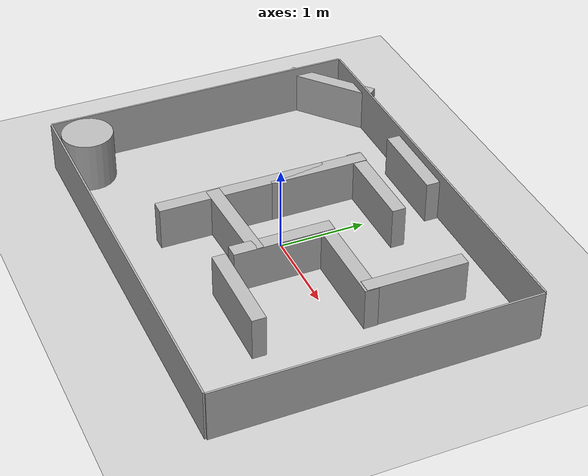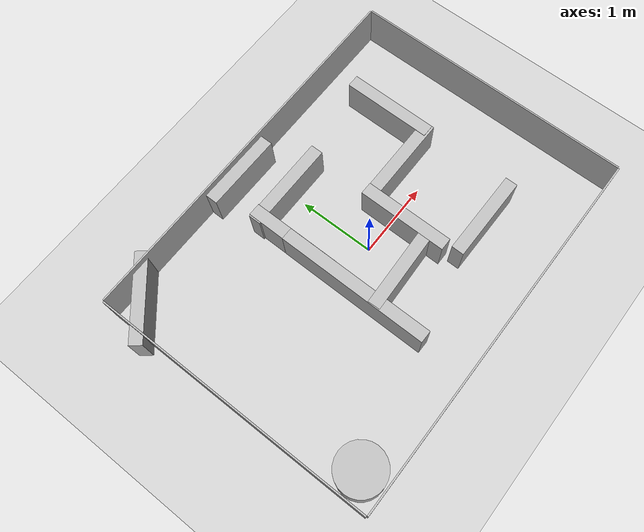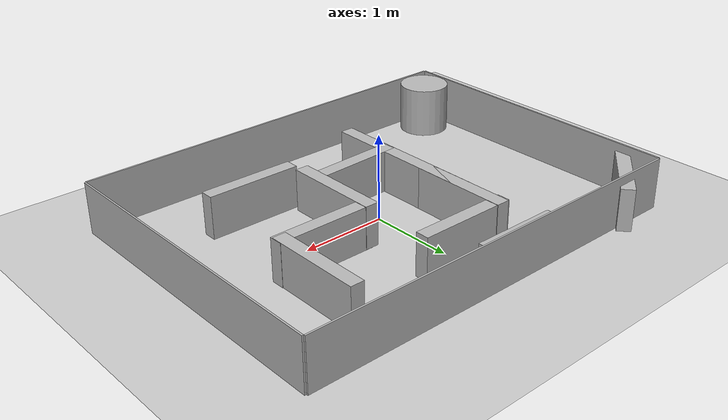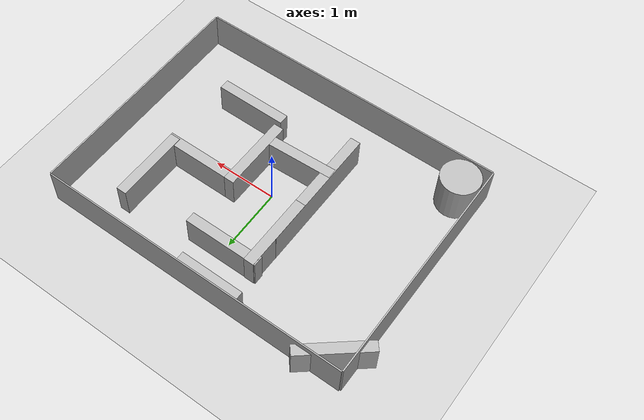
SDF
<sdf version="1.6">
 <world name="default">
  <light name="sun" type="directional">
   <pose>0 0 10 0 -0 0</pose>
   <diffuse>0.8 0.8 0.8 1</diffuse>
   <specular>0.2 0.2 0.2 1</specular>
   <attenuation>
    <range>1000</range>
    <constant>0.9</constant>
    <linear>0.01</linear>
    <quadratic>0.001</quadratic>
   </attenuation>
   <direction>-0.5 0.1 -0.9</direction>
  </light>
  <model name="ground_plane">
   <static>1</static>
   <link name="link">
    <collision name="collision">
     <geometry><plane><normal>0 0 1</normal><size>100 100</size></plane></geometry>
     <surface><friction><ode><mu>100</mu><mu2>50</mu2></ode></friction></surface>
    </collision>
    <visual name="visual">
     <cast_shadows>0</cast_shadows>
     <geometry><plane><normal>0 0 1</normal><size>100 100</size></plane></geometry>
     <material>
      <script><uri>file://media/materials/scripts/gazebo.material</uri><name>Gazebo/Grey</name></script>
     </material>
    </visual>
   </link>
  </model>
  <gravity>0 0 -9.8</gravity>
  <magnetic_field>6e-06 2.3e-05 -4.2e-05</magnetic_field>
  <atmosphere type="adiabatic"/>
  <physics name="default_physics" default="0" type="ode">
   <max_step_size>0.001</max_step_size>
   <real_time_factor>1</real_time_factor>
   <real_time_update_rate>1000</real_time_update_rate>
  </physics>
  <scene><ambient>0.4 0.4 0.4 1</ambient><background>0.7 0.7 0.7 1</background><shadows>1</shadows></scene>
  <spherical_coordinates>
   <surface_model>EARTH_WGS84</surface_model>
   <latitude_deg>0</latitude_deg>
   <longitude_deg>0</longitude_deg>
   <elevation>0</elevation>
   <heading_deg>0</heading_deg>
  </spherical_coordinates>
  <model name="border_Top">
   <pose>1e-06 1.84001 0.3 -1.4e-05 -0 -4e-06</pose>
   <static>1</static>
   <link name="link">
    <collision name="collision">
     <geometry><box><size>4.88 0.02 0.6</size></box></geometry>
     <surface><friction><ode><mu>0.01</mu><mu2>0.01</mu2></ode></friction></surface>
    </collision>
    <visual name="visual"><geometry><box><size>4.88 0.02 0.6</size></box></geometry></visual>
    <inertial>
     <inertia><ixx>1</ixx><ixy>0</ixy><ixz>0</ixz><iyy>1</iyy><iyz>0</iyz><izz>1</izz></inertia>
     <mass>1</mass>
    </inertial>
   </link>
  </model>
  <model name="border_Bot">
   <static>1</static>
   <pose>-9e-06 -1.84002 0.3 1e-05 -0 2e-06</pose>
   <link name="link">
    <collision name="collision">
     <geometry><box><size>4.88 0.02 0.6</size></box></geometry>
     <surface><friction><ode><mu>0.01</mu><mu2>0.01</mu2></ode></friction></surface>
    </collision>
    <visual name="visual"><geometry><box><size>4.88 0.02 0.6</size></box></geometry></visual>
    <inertial>
     <inertia><ixx>1</ixx><ixy>0</ixy><ixz>0</ixz><iyy>1</iyy><iyz>0</iyz><izz>1</izz></inertia>
     <mass>1</mass>
    </inertial>
   </link>
  </model>
  <model name="border_Left">
   <static>1</static>
   <pose>-2.45001 5e-06 0.3 0 7e-06 0</pose>
   <link name="link">
    <collision name="collision">
     <geometry><box><size>0.02 3.66 0.6</size></box></geometry>
     <surface><friction><ode><mu>0.01</mu><mu2>0.01</mu2></ode></friction></surface>
    </collision>
    <visual name="visual"><geometry><box><size>0.02 3.66 0.6</size></box></geometry></visual>
    <inertial>
     <inertia><ixx>1</ixx><ixy>0</ixy><ixz>0</ixz><iyy>1</iyy><iyz>0</iyz><izz>1</izz></inertia>
     <mass>1</mass>
    </inertial>
   </link>
  </model>
  <model name="border_Right">
   <static>1</static>
   <pose>2.45 -2e-06 0.3 0 -8e-06 -1e-06</pose>
   <link name="link">
    <collision name="collision">
     <geometry><box><size>0.02 3.66 0.6</size></box></geometry>
     <surface><friction><ode><mu>0.01</mu><mu2>0.01</mu2></ode></friction></surface>
    </collision>
    <visual name="visual"><geometry><box><size>0.02 3.66 0.6</size></box></geometry></visual>
    <inertial>
     <inertia><ixx>1</ixx><ixy>0</ixy><ixz>0</ixz><iyy>1</iyy><iyz>0</iyz><izz>1</izz></inertia>
     <mass>1</mass>
    </inertial>
   </link>
  </model>
  <model name="cylinder_1">
   <pose>-2.12191 -1.51039 0.3 0 -0 0</pose>
   <static>1</static>
   <link name="link">
    <collision name="collision">
     <geometry><cylinder><radius>0.3</radius><length>0.6</length></cylinder></geometry>
    </collision>
    <visual name="visual">
     <geometry><cylinder><radius>0.3</radius><length>0.6</length></cylinder></geometry>
    </visual>
   </link>
  </model>
  <model name="box_1_clone">
   <static>1</static>
   <pose>-0.272552 1.74672 0.250001 -3e-06 -0 -1.57648</pose>
   <link name="link">
    <collision name="collision">
     <geometry><box><size>0.16 1 0.5</size></box></geometry>
     <surface><friction><ode><mu>0.01</mu><mu2>0.01</mu2></ode></friction></surface>
    </collision>
    <visual name="visual"><geometry><box><size>0.16 1 0.5</size></box></geometry></visual>
    <inertial>
     <inertia><ixx>1</ixx><ixy>0</ixy><ixz>0</ixz><iyy>1</iyy><iyz>0</iyz><izz>1</izz></inertia>
     <mass>1</mass>
    </inertial>
   </link>
  </model>
  <model name="box_1_clone_0">
   <static>1</static>
   <pose>-0.567894 -0.223682 0.250001 -0 3e-06 -0.003728</pose>
   <link name="link">
    <collision name="collision">
     <geometry><box><size>0.16 1.9931 0.5</size></box></geometry>
     <surface><friction><ode><mu>0.01</mu><mu2>0.01</mu2></ode></friction></surface>
    </collision>
    <visual name="visual"><geometry><box><size>0.16 1.9931 0.5</size></box></geometry></visual>
    <inertial>
     <inertia><ixx>1</ixx><ixy>0</ixy><ixz>0</ixz><iyy>1</iyy><iyz>0</iyz><izz>1</izz></inertia>
     <mass>1</mass>
    </inertial>
   </link>
  </model>
  <model name="box_1_clone_clone">
   <static>1</static>
   <pose>1.02354 -0.915799 0.250001 -3e-06 -0 -1.57648</pose>
   <link name="link">
    <collision name="collision">
     <geometry><box><size>0.16 1.10724 0.5</size></box></geometry>
     <surface><friction><ode><mu>0.01</mu><mu2>0.01</mu2></ode></friction></surface>
    </collision>
    <visual name="visual"><geometry><box><size>0.16 1.10724 0.5</size></box></geometry></visual>
    <inertial>
     <inertia><ixx>1</ixx><ixy>0</ixy><ixz>0</ixz><iyy>1</iyy><iyz>0</iyz><izz>1</izz></inertia>
     <mass>1</mass>
    </inertial>
   </link>
  </model>
  <model name="box_1_clone_clone_0">
   <static>1</static>
   <pose>-2.16837 1.5972 0.250001 -2e-06 2e-06 -0.874475</pose>
   <link name="link">
    <collision name="collision">
     <geometry><box><size>0.16 1.10724 0.5</size></box></geometry>
     <surface><friction><ode><mu>0.01</mu><mu2>0.01</mu2></ode></friction></surface>
    </collision>
    <visual name="visual"><geometry><box><size>0.16 1.10724 0.5</size></box></geometry></visual>
    <inertial>
     <inertia><ixx>1</ixx><ixy>0</ixy><ixz>0</ixz><iyy>1</iyy><iyz>0</iyz><izz>1</izz></inertia>
     <mass>1</mass>
    </inertial>
   </link>
  </model>
  <model name="box_1_clone_0_clone">
   <static>1</static>
   <pose>-0.054526 -0.524471 0.250002 -3e-06 1e-06 -1.53147</pose>
   <link name="link">
    <collision name="collision">
     <geometry><box><size>0.16 1.16482 0.5</size></box></geometry>
     <surface><friction><ode><mu>0.01</mu><mu2>0.01</mu2></ode></friction></surface>
    </collision>
    <visual name="visual"><geometry><box><size>0.16 1.16482 0.5</size></box></geometry></visual>
    <inertial>
     <inertia><ixx>1</ixx><ixy>0</ixy><ixz>0</ixz><iyy>1</iyy><iyz>0</iyz><izz>1</izz></inertia>
     <mass>1</mass>
    </inertial>
   </link>
  </model>
  <model name="box_1_clone_0_clone_0">
   <static>1</static>
   <pose>-0.077723 1.18033 0.245761 -3e-06 -0 -1.57145</pose>
   <link name="link">
    <collision name="collision">
     <geometry><box><size>0.16 1.16482 0.5</size></box></geometry>
     <surface><friction><ode><mu>0.01</mu><mu2>0.01</mu2></ode></friction></surface>
    </collision>
    <visual name="visual"><geometry><box><size>0.16 1.16482 0.5</size></box></geometry></visual>
    <inertial>
     <inertia><ixx>1</ixx><ixy>0</ixy><ixz>0</ixz><iyy>1</iyy><iyz>0</iyz><izz>1</izz></inertia>
     <mass>1</mass>
    </inertial>
   </link>
  </model>
  <model name="box_1_clone_0_clone_1">
   <static>1</static>
   <pose>0.453128 -0.183537 0.250001 -0 3e-06 -0.003728</pose>
   <link name="link">
    <collision name="collision">
     <geometry><box><size>0.16 1.16482 0.5</size></box></geometry>
     <surface><friction><ode><mu>0.01</mu><mu2>0.01</mu2></ode></friction></surface>
    </collision>
    <visual name="visual"><geometry><box><size>0.16 1.16482 0.5</size></box></geometry></visual>
    <inertial>
     <inertia><ixx>1</ixx><ixy>0</ixy><ixz>0</ixz><iyy>1</iyy><iyz>0</iyz><izz>1</izz></inertia>
     <mass>1</mass>
    </inertial>
   </link>
  </model>
  <model name="box_1_clone_0_clone_2">
   <static>1</static>
   <pose>-0.563006 0.685208 0.250001 -0 3e-06 -0.003728</pose>
   <link name="link">
    <collision name="collision">
     <geometry><box><size>0.16 1.16482 0.5</size></box></geometry>
     <surface><friction><ode><mu>0.01</mu><mu2>0.01</mu2></ode></friction></surface>
    </collision>
    <visual name="visual"><geometry><box><size>0.16 1.16482 0.5</size></box></geometry></visual>
    <inertial>
     <inertia><ixx>1</ixx><ixy>0</ixy><ixz>0</ixz><iyy>1</iyy><iyz>0</iyz><izz>1</izz></inertia>
     <mass>1</mass>
    </inertial>
   </link>
  </model>
  <model name="box_1_clone_0_clone_0_clone">
   <static>1</static>
   <pose>1.02465 0.315637 0.245761 -3e-06 -0 -1.57145</pose>
   <link name="link">
    <collision name="collision">
     <geometry><box><size>0.16 1.16482 0.5</size></box></geometry>
     <surface><friction><ode><mu>0.01</mu><mu2>0.01</mu2></ode></friction></surface>
    </collision>
    <visual name="visual"><geometry><box><size>0.16 1.16482 0.5</size></box></geometry></visual>
    <inertial>
     <inertia><ixx>1</ixx><ixy>0</ixy><ixz>0</ixz><iyy>1</iyy><iyz>0</iyz><izz>1</izz></inertia>
     <mass>1</mass>
    </inertial>
   </link>
  </model>
  <model name="box_1_clone_0_clone_1_clone">
   <static>1</static>
   <pose>1.52705 0.844166 0.250001 -0 3e-06 -0.003728</pose>
   <link name="link">
    <collision name="collision">
     <geometry><box><size>0.16 1.16482 0.5</size></box></geometry>
     <surface><friction><ode><mu>0.01</mu><mu2>0.01</mu2></ode></friction></surface>
    </collision>
    <visual name="visual"><geometry><box><size>0.16 1.16482 0.5</size></box></geometry></visual>
    <inertial>
     <inertia><ixx>1</ixx><ixy>0</ixy><ixz>0</ixz><iyy>1</iyy><iyz>0</iyz><izz>1</izz></inertia>
     <mass>1</mass>
    </inertial>
   </link>
  </model>
 </world>
</sdf>
